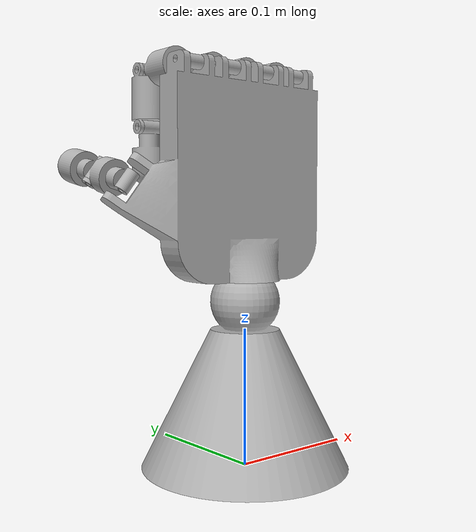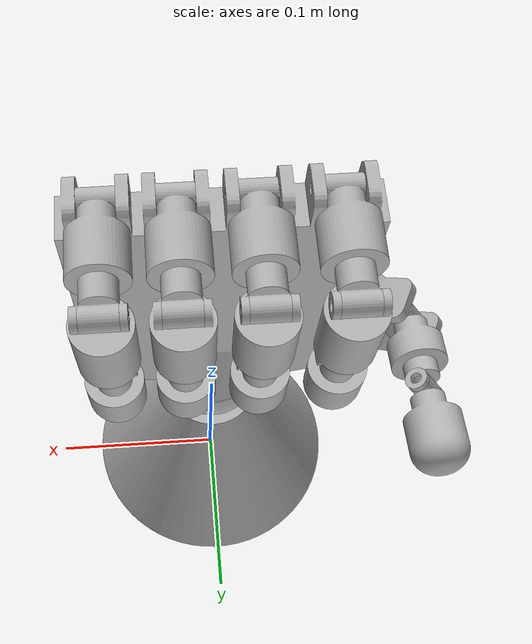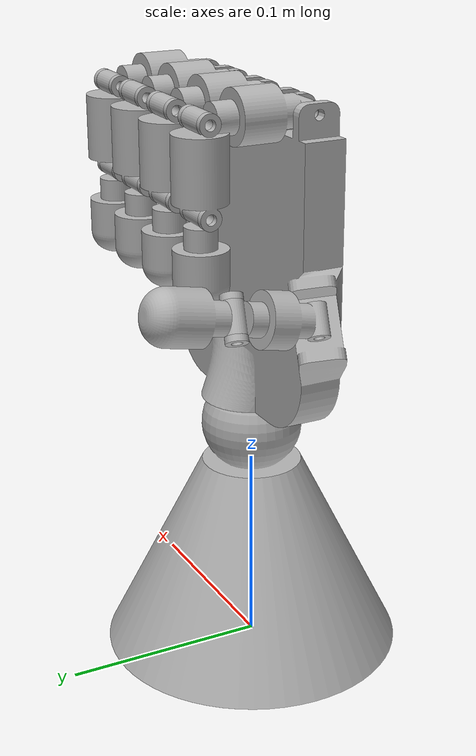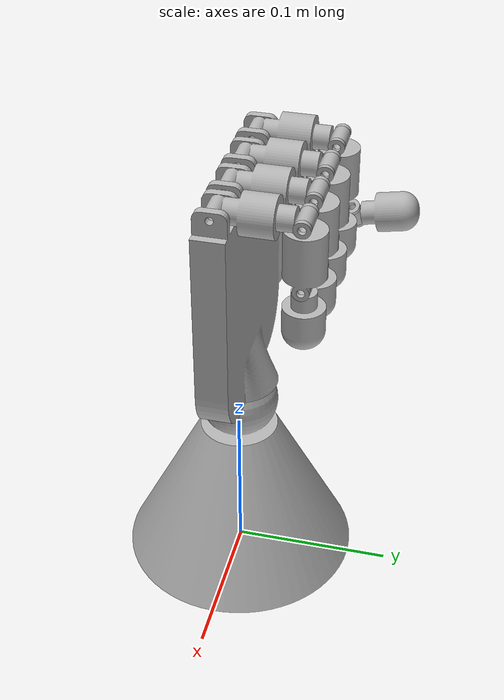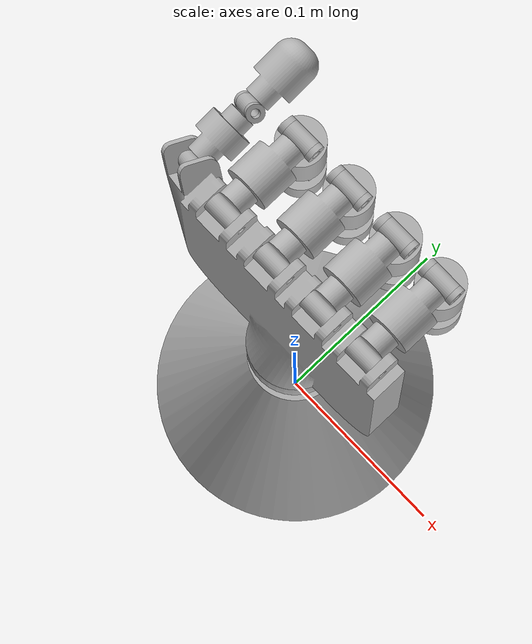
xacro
<?xml version="1.0" ?>
<robot name="hand" xmlns:xacro="http://www.ros.org/wiki/xacro">

<xacro:include filename="$(find hand_description)/urdf/materials.xacro" />
<xacro:include filename="$(find hand_description)/urdf/hand.trans" />
<xacro:include filename="$(find hand_description)/urdf/hand.gazebo" />
<link name="base_link">
  <inertial>
    <origin xyz="0.0 0.0 0.04059887632407671" rpy="0 0 0"/>
    <mass value="7.1785523034220695"/>
    <inertia ixx="0.013714" iyy="0.013714" izz="0.011784" ixy="0.0" iyz="-0.0" ixz="0.0"/>
  </inertial>
  <visual>
    <origin xyz="0 0 0" rpy="0 0 0"/>
    <geometry>
      <mesh filename="package://hand_description/meshes/base_link.stl" scale="0.001 0.001 0.001"/>
    </geometry>
    <material name="silver"/>
  </visual>
  <collision>
    <origin xyz="0 0 0" rpy="0 0 0"/>
    <geometry>
      <mesh filename="package://hand_description/meshes/base_link.stl" scale="0.001 0.001 0.001"/>
    </geometry>
  </collision>
</link>

<link name="palm_1">
  <inertial>
    <origin xyz="-0.005914617900261412 0.00037729563091550624 0.0866626904719881" rpy="0 0 0"/>
    <mass value="3.1025400256133953"/>
    <inertia ixx="0.005278" iyy="0.009998" izz="0.004986" ixy="9.1e-05" iyz="1.5e-05" ixz="-0.000171"/>
  </inertial>
  <visual>
    <origin xyz="-0.0 -0.0 -0.12" rpy="0 0 0"/>
    <geometry>
      <mesh filename="package://hand_description/meshes/palm_1.stl" scale="0.001 0.001 0.001"/>
    </geometry>
    <material name="silver"/>
  </visual>
  <collision>
    <origin xyz="-0.0 -0.0 -0.12" rpy="0 0 0"/>
    <geometry>
      <mesh filename="package://hand_description/meshes/palm_1.stl" scale="0.001 0.001 0.001"/>
    </geometry>
  </collision>
</link>

<link name="P1_1">
  <inertial>
    <origin xyz="-0.0075 0.024999999999999994 1.0158540675320182e-14" rpy="0 0 0"/>
    <mass value="0.11868347996639739"/>
    <inertia ixx="2.1e-05" iyy="7e-06" izz="2.1e-05" ixy="0.0" iyz="-0.0" ixz="0.0"/>
  </inertial>
  <visual>
    <origin xyz="-0.053 0.0 -0.285" rpy="0 0 0"/>
    <geometry>
      <mesh filename="package://hand_description/meshes/P1_1.stl" scale="0.001 0.001 0.001"/>
    </geometry>
    <material name="silver"/>
  </visual>
  <collision>
    <origin xyz="-0.053 0.0 -0.285" rpy="0 0 0"/>
    <geometry>
      <mesh filename="package://hand_description/meshes/P1_1.stl" scale="0.001 0.001 0.001"/>
    </geometry>
  </collision>
</link>

<link name="R1_1">
  <inertial>
    <origin xyz="-0.007499999999999977 0.02499999999999997 1.0158540675320182e-14" rpy="0 0 0"/>
    <mass value="0.11868347996639744"/>
    <inertia ixx="2.1e-05" iyy="7e-06" izz="2.1e-05" ixy="0.0" iyz="0.0" ixz="-0.0"/>
  </inertial>
  <visual>
    <origin xyz="-0.023 0.0 -0.285" rpy="0 0 0"/>
    <geometry>
      <mesh filename="package://hand_description/meshes/R1_1.stl" scale="0.001 0.001 0.001"/>
    </geometry>
    <material name="silver"/>
  </visual>
  <collision>
    <origin xyz="-0.023 0.0 -0.285" rpy="0 0 0"/>
    <geometry>
      <mesh filename="package://hand_description/meshes/R1_1.stl" scale="0.001 0.001 0.001"/>
    </geometry>
  </collision>
</link>

<link name="M1_1">
  <inertial>
    <origin xyz="-0.007499590955043892 0.024999999999999897 1.0158540675320182e-14" rpy="0 0 0"/>
    <mass value="0.1186834799663969"/>
    <inertia ixx="2.1e-05" iyy="7e-06" izz="2.1e-05" ixy="0.0" iyz="0.0" ixz="0.0"/>
  </inertial>
  <visual>
    <origin xyz="0.008191 0.0 -0.285" rpy="0 0 0"/>
    <geometry>
      <mesh filename="package://hand_description/meshes/M1_1.stl" scale="0.001 0.001 0.001"/>
    </geometry>
    <material name="silver"/>
  </visual>
  <collision>
    <origin xyz="0.008191 0.0 -0.285" rpy="0 0 0"/>
    <geometry>
      <mesh filename="package://hand_description/meshes/M1_1.stl" scale="0.001 0.001 0.001"/>
    </geometry>
  </collision>
</link>

<link name="I1_1">
  <inertial>
    <origin xyz="-0.00749989105614049 0.024999999999999963 1.0158540675320182e-14" rpy="0 0 0"/>
    <mass value="0.11868347996639722"/>
    <inertia ixx="2.1e-05" iyy="7e-06" izz="2.1e-05" ixy="0.0" iyz="0.0" ixz="0.0"/>
  </inertial>
  <visual>
    <origin xyz="0.04081 0.0 -0.285" rpy="0 0 0"/>
    <geometry>
      <mesh filename="package://hand_description/meshes/I1_1.stl" scale="0.001 0.001 0.001"/>
    </geometry>
    <material name="silver"/>
  </visual>
  <collision>
    <origin xyz="0.04081 0.0 -0.285" rpy="0 0 0"/>
    <geometry>
      <mesh filename="package://hand_description/meshes/I1_1.stl" scale="0.001 0.001 0.001"/>
    </geometry>
  </collision>
</link>

<link name="T1_1">
  <inertial>
    <origin xyz="-0.004240749228645091 0.02124494204261544 -0.002231975045458773" rpy="0 0 0"/>
    <mass value="0.0863152601245754"/>
    <inertia ixx="1.2e-05" iyy="5e-06" izz="1.1e-05" ixy="0.0" iyz="-1e-06" ixz="-0.0"/>
  </inertial>
  <visual>
    <origin xyz="0.085106 -0.014549 -0.210278" rpy="0 0 0"/>
    <geometry>
      <mesh filename="package://hand_description/meshes/T1_1.stl" scale="0.001 0.001 0.001"/>
    </geometry>
    <material name="silver"/>
  </visual>
  <collision>
    <origin xyz="0.085106 -0.014549 -0.210278" rpy="0 0 0"/>
    <geometry>
      <mesh filename="package://hand_description/meshes/T1_1.stl" scale="0.001 0.001 0.001"/>
    </geometry>
  </collision>
</link>

<link name="I2_1">
  <inertial>
    <origin xyz="0.007500108943859496 -1.3877787807814457e-17 -0.01999999999999591" rpy="0 0 0"/>
    <mass value="0.12114963019946477"/>
    <inertia ixx="1.5e-05" iyy="1.6e-05" izz="1e-05" ixy="-0.0" iyz="0.0" ixz="-0.0"/>
  </inertial>
  <visual>
    <origin xyz="0.05581 -0.05 -0.285" rpy="0 0 0"/>
    <geometry>
      <mesh filename="package://hand_description/meshes/I2_1.stl" scale="0.001 0.001 0.001"/>
    </geometry>
    <material name="silver"/>
  </visual>
  <collision>
    <origin xyz="0.05581 -0.05 -0.285" rpy="0 0 0"/>
    <geometry>
      <mesh filename="package://hand_description/meshes/I2_1.stl" scale="0.001 0.001 0.001"/>
    </geometry>
  </collision>
</link>

<link name="M2_1">
  <inertial>
    <origin xyz="0.007500409044956101 -1.3877787807814457e-16 -0.019999999999995854" rpy="0 0 0"/>
    <mass value="0.12114963019946477"/>
    <inertia ixx="1.5e-05" iyy="1.6e-05" izz="1e-05" ixy="-0.0" iyz="0.0" ixz="-0.0"/>
  </inertial>
  <visual>
    <origin xyz="0.023191 -0.05 -0.285" rpy="0 0 0"/>
    <geometry>
      <mesh filename="package://hand_description/meshes/M2_1.stl" scale="0.001 0.001 0.001"/>
    </geometry>
    <material name="silver"/>
  </visual>
  <collision>
    <origin xyz="0.023191 -0.05 -0.285" rpy="0 0 0"/>
    <geometry>
      <mesh filename="package://hand_description/meshes/M2_1.stl" scale="0.001 0.001 0.001"/>
    </geometry>
  </collision>
</link>

<link name="R2_1">
  <inertial>
    <origin xyz="0.0075000000000000466 -1.1796119636642288e-16 -0.019999999999995854" rpy="0 0 0"/>
    <mass value="0.12114963019946477"/>
    <inertia ixx="1.5e-05" iyy="1.6e-05" izz="1e-05" ixy="-0.0" iyz="0.0" ixz="0.0"/>
  </inertial>
  <visual>
    <origin xyz="-0.008 -0.05 -0.285" rpy="0 0 0"/>
    <geometry>
      <mesh filename="package://hand_description/meshes/R2_1.stl" scale="0.001 0.001 0.001"/>
    </geometry>
    <material name="silver"/>
  </visual>
  <collision>
    <origin xyz="-0.008 -0.05 -0.285" rpy="0 0 0"/>
    <geometry>
      <mesh filename="package://hand_description/meshes/R2_1.stl" scale="0.001 0.001 0.001"/>
    </geometry>
  </collision>
</link>

<link name="P2_1">
  <inertial>
    <origin xyz="0.0075 -2.7755575615628914e-17 -0.019999999999995854" rpy="0 0 0"/>
    <mass value="0.12114963019946477"/>
    <inertia ixx="1.5e-05" iyy="1.6e-05" izz="1e-05" ixy="0.0" iyz="0.0" ixz="0.0"/>
  </inertial>
  <visual>
    <origin xyz="-0.038 -0.05 -0.285" rpy="0 0 0"/>
    <geometry>
      <mesh filename="package://hand_description/meshes/P2_1.stl" scale="0.001 0.001 0.001"/>
    </geometry>
    <material name="silver"/>
  </visual>
  <collision>
    <origin xyz="-0.038 -0.05 -0.285" rpy="0 0 0"/>
    <geometry>
      <mesh filename="package://hand_description/meshes/P2_1.stl" scale="0.001 0.001 0.001"/>
    </geometry>
  </collision>
</link>

<link name="P3_1">
  <inertial>
    <origin xyz="-0.007499999999999993 1.0422218643668657e-13 -0.022926738733067747" rpy="0 0 0"/>
    <mass value="0.11012879346184722"/>
    <inertia ixx="1.5e-05" iyy="1.5e-05" izz="7e-06" ixy="0.0" iyz="-0.0" ixz="0.0"/>
  </inertial>
  <visual>
    <origin xyz="-0.053 -0.05 -0.245" rpy="0 0 0"/>
    <geometry>
      <mesh filename="package://hand_description/meshes/P3_1.stl" scale="0.001 0.001 0.001"/>
    </geometry>
    <material name="silver"/>
  </visual>
  <collision>
    <origin xyz="-0.053 -0.05 -0.245" rpy="0 0 0"/>
    <geometry>
      <mesh filename="package://hand_description/meshes/P3_1.stl" scale="0.001 0.001 0.001"/>
    </geometry>
  </collision>
</link>

<link name="R3_1">
  <inertial>
    <origin xyz="-0.007499999999999953 -1.0438871989038034e-13 -0.022926738733067775" rpy="0 0 0"/>
    <mass value="0.11012879346184722"/>
    <inertia ixx="1.5e-05" iyy="1.5e-05" izz="7e-06" ixy="0.0" iyz="0.0" ixz="0.0"/>
  </inertial>
  <visual>
    <origin xyz="-0.023 -0.05 -0.245" rpy="0 0 0"/>
    <geometry>
      <mesh filename="package://hand_description/meshes/R3_1.stl" scale="0.001 0.001 0.001"/>
    </geometry>
    <material name="silver"/>
  </visual>
  <collision>
    <origin xyz="-0.023 -0.05 -0.245" rpy="0 0 0"/>
    <geometry>
      <mesh filename="package://hand_description/meshes/R3_1.stl" scale="0.001 0.001 0.001"/>
    </geometry>
  </collision>
</link>

<link name="M3_1">
  <inertial>
    <origin xyz="-0.007499590955043895 1.0411810302812796e-13 -0.022926738733067775" rpy="0 0 0"/>
    <mass value="0.11012879346184722"/>
    <inertia ixx="1.5e-05" iyy="1.5e-05" izz="7e-06" ixy="0.0" iyz="-0.0" ixz="-0.0"/>
  </inertial>
  <visual>
    <origin xyz="0.008191 -0.05 -0.245" rpy="0 0 0"/>
    <geometry>
      <mesh filename="package://hand_description/meshes/M3_1.stl" scale="0.001 0.001 0.001"/>
    </geometry>
    <material name="silver"/>
  </visual>
  <collision>
    <origin xyz="0.008191 -0.05 -0.245" rpy="0 0 0"/>
    <geometry>
      <mesh filename="package://hand_description/meshes/M3_1.stl" scale="0.001 0.001 0.001"/>
    </geometry>
  </collision>
</link>

<link name="I3_1">
  <inertial>
    <origin xyz="-0.007499891056140483 -1.0429851426962955e-13 -0.022926738733067886" rpy="0 0 0"/>
    <mass value="0.11012879346184722"/>
    <inertia ixx="1.5e-05" iyy="1.5e-05" izz="7e-06" ixy="0.0" iyz="0.0" ixz="-0.0"/>
  </inertial>
  <visual>
    <origin xyz="0.04081 -0.05 -0.245" rpy="0 0 0"/>
    <geometry>
      <mesh filename="package://hand_description/meshes/I3_1.stl" scale="0.001 0.001 0.001"/>
    </geometry>
    <material name="silver"/>
  </visual>
  <collision>
    <origin xyz="0.04081 -0.05 -0.245" rpy="0 0 0"/>
    <geometry>
      <mesh filename="package://hand_description/meshes/I3_1.stl" scale="0.001 0.001 0.001"/>
    </geometry>
  </collision>
</link>

<link name="T2_1">
  <inertial>
    <origin xyz="0.004241250779561612 0.022239411600103447 0.010554123548223576" rpy="0 0 0"/>
    <mass value="0.10596716477817673"/>
    <inertia ixx="1.3e-05" iyy="7e-06" izz="1.3e-05" ixy="0.0" iyz="-1e-06" ixz="-0.0"/>
  </inertial>
  <visual>
    <origin xyz="0.093588 -0.056162 -0.205646" rpy="0 0 0"/>
    <geometry>
      <mesh filename="package://hand_description/meshes/T2_1.stl" scale="0.001 0.001 0.001"/>
    </geometry>
    <material name="silver"/>
  </visual>
  <collision>
    <origin xyz="0.093588 -0.056162 -0.205646" rpy="0 0 0"/>
    <geometry>
      <mesh filename="package://hand_description/meshes/T2_1.stl" scale="0.001 0.001 0.001"/>
    </geometry>
  </collision>
</link>

<joint name="PALM_JOINT" type="continuous">
  <origin xyz="0.0 0.0 0.12" rpy="0 0 0"/>
  <parent link="base_link"/>
  <child link="palm_1"/>
  <axis xyz="0.0 0.0 1.0"/>
</joint>

<joint name="P_MCP" type="continuous">
  <origin xyz="0.053 -0.0 0.165" rpy="0 0 0"/>
  <parent link="palm_1"/>
  <child link="P1_1"/>
  <axis xyz="1.0 0.0 0.0"/>
</joint>

<joint name="R_MCP" type="continuous">
  <origin xyz="0.023 -0.0 0.165" rpy="0 0 0"/>
  <parent link="palm_1"/>
  <child link="R1_1"/>
  <axis xyz="1.0 0.0 0.0"/>
</joint>

<joint name="M_MCP" type="continuous">
  <origin xyz="-0.008191 -0.0 0.165" rpy="0 0 0"/>
  <parent link="palm_1"/>
  <child link="M1_1"/>
  <axis xyz="1.0 0.0 0.0"/>
</joint>

<joint name="I_MCP" type="continuous">
  <origin xyz="-0.04081 -0.0 0.165" rpy="0 0 0"/>
  <parent link="palm_1"/>
  <child link="I1_1"/>
  <axis xyz="1.0 0.0 0.0"/>
</joint>

<joint name="T_MCP" type="continuous">
  <origin xyz="-0.085106 0.014549 0.090278" rpy="0 0 0"/>
  <parent link="palm_1"/>
  <child link="T1_1"/>
  <axis xyz="-0.565462 0.15503 -0.810073"/>
</joint>

<joint name="I_PIP" type="continuous">
  <origin xyz="-0.015 0.05 0.0" rpy="0 0 0"/>
  <parent link="I1_1"/>
  <child link="I2_1"/>
  <axis xyz="-1.0 0.0 0.0"/>
</joint>

<joint name="M_PIP" type="continuous">
  <origin xyz="-0.015 0.05 0.0" rpy="0 0 0"/>
  <parent link="M1_1"/>
  <child link="M2_1"/>
  <axis xyz="-1.0 -0.0 -0.0"/>
</joint>

<joint name="R_PIP" type="continuous">
  <origin xyz="-0.015 0.05 0.0" rpy="0 0 0"/>
  <parent link="R1_1"/>
  <child link="R2_1"/>
  <axis xyz="1.0 0.0 0.0"/>
</joint>

<joint name="P_PIP" type="continuous">
  <origin xyz="-0.015 0.05 0.0" rpy="0 0 0"/>
  <parent link="P1_1"/>
  <child link="P2_1"/>
  <axis xyz="-1.0 0.0 0.0"/>
</joint>

<joint name="P_DIP" type="continuous">
  <origin xyz="0.015 0.0 -0.04" rpy="0 0 0"/>
  <parent link="P2_1"/>
  <child link="P3_1"/>
  <axis xyz="-1.0 -0.0 0.0"/>
</joint>

<joint name="R_DIP" type="continuous">
  <origin xyz="0.015 0.0 -0.04" rpy="0 0 0"/>
  <parent link="R2_1"/>
  <child link="R3_1"/>
  <axis xyz="1.0 -0.0 0.0"/>
</joint>

<joint name="M_DIP" type="continuous">
  <origin xyz="0.015 0.0 -0.04" rpy="0 0 0"/>
  <parent link="M2_1"/>
  <child link="M3_1"/>
  <axis xyz="-1.0 0.0 -0.0"/>
</joint>

<joint name="I_DIP" type="continuous">
  <origin xyz="0.015 0.0 -0.04" rpy="0 0 0"/>
  <parent link="I2_1"/>
  <child link="I3_1"/>
  <axis xyz="1.0 -0.0 -0.0"/>
</joint>

<joint name="T_DIP" type="continuous">
  <origin xyz="-0.008482 0.041613 -0.004632" rpy="0 0 0"/>
  <parent link="T1_1"/>
  <child link="T2_1"/>
  <axis xyz="0.565462 -0.15503 0.810073"/>
</joint>

</robot>

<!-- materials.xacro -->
<robot name="hand" xmlns:xacro="http://www.ros.org/wiki/xacro" >

<material name="silver">
  <color rgba="0.700 0.700 0.700 1.000"/>
</material>

</robot>

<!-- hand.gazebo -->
<robot name="hand" xmlns:xacro="http://www.ros.org/wiki/xacro" >

<xacro:property name="body_color" value="Gazebo/Silver" />

<gazebo>
  <plugin name="control" filename="libgazebo_ros_control.so"/>
</gazebo>
<gazebo reference="base_link">
  <material>${body_color}</material>
  <mu1>0.2</mu1>
  <mu2>0.2</mu2>
  <selfCollide>true</selfCollide>
  <gravity>true</gravity>
</gazebo>

<gazebo reference="palm_1">
  <material>${body_color}</material>
  <mu1>0.2</mu1>
  <mu2>0.2</mu2>
  <selfCollide>true</selfCollide>
</gazebo>

<gazebo reference="P1_1">
  <material>${body_color}</material>
  <mu1>0.2</mu1>
  <mu2>0.2</mu2>
  <selfCollide>true</selfCollide>
</gazebo>

<gazebo reference="R1_1">
  <material>${body_color}</material>
  <mu1>0.2</mu1>
  <mu2>0.2</mu2>
  <selfCollide>true</selfCollide>
</gazebo>

<gazebo reference="M1_1">
  <material>${body_color}</material>
  <mu1>0.2</mu1>
  <mu2>0.2</mu2>
  <selfCollide>true</selfCollide>
</gazebo>

<gazebo reference="I1_1">
  <material>${body_color}</material>
  <mu1>0.2</mu1>
  <mu2>0.2</mu2>
  <selfCollide>true</selfCollide>
</gazebo>

<gazebo reference="T1_1">
  <material>${body_color}</material>
  <mu1>0.2</mu1>
  <mu2>0.2</mu2>
  <selfCollide>true</selfCollide>
</gazebo>

<gazebo reference="I2_1">
  <material>${body_color}</material>
  <mu1>0.2</mu1>
  <mu2>0.2</mu2>
  <selfCollide>true</selfCollide>
</gazebo>

<gazebo reference="M2_1">
  <material>${body_color}</material>
  <mu1>0.2</mu1>
  <mu2>0.2</mu2>
  <selfCollide>true</selfCollide>
</gazebo>

<gazebo reference="R2_1">
  <material>${body_color}</material>
  <mu1>0.2</mu1>
  <mu2>0.2</mu2>
  <selfCollide>true</selfCollide>
</gazebo>

<gazebo reference="P2_1">
  <material>${body_color}</material>
  <mu1>0.2</mu1>
  <mu2>0.2</mu2>
  <selfCollide>true</selfCollide>
</gazebo>

<gazebo reference="P3_1">
  <material>${body_color}</material>
  <mu1>0.2</mu1>
  <mu2>0.2</mu2>
  <selfCollide>true</selfCollide>
</gazebo>

<gazebo reference="R3_1">
  <material>${body_color}</material>
  <mu1>0.2</mu1>
  <mu2>0.2</mu2>
  <selfCollide>true</selfCollide>
</gazebo>

<gazebo reference="M3_1">
  <material>${body_color}</material>
  <mu1>0.2</mu1>
  <mu2>0.2</mu2>
  <selfCollide>true</selfCollide>
</gazebo>

<gazebo reference="I3_1">
  <material>${body_color}</material>
  <mu1>0.2</mu1>
  <mu2>0.2</mu2>
  <selfCollide>true</selfCollide>
</gazebo>

<gazebo reference="T2_1">
  <material>${body_color}</material>
  <mu1>0.2</mu1>
  <mu2>0.2</mu2>
  <selfCollide>true</selfCollide>
</gazebo>

</robot>
